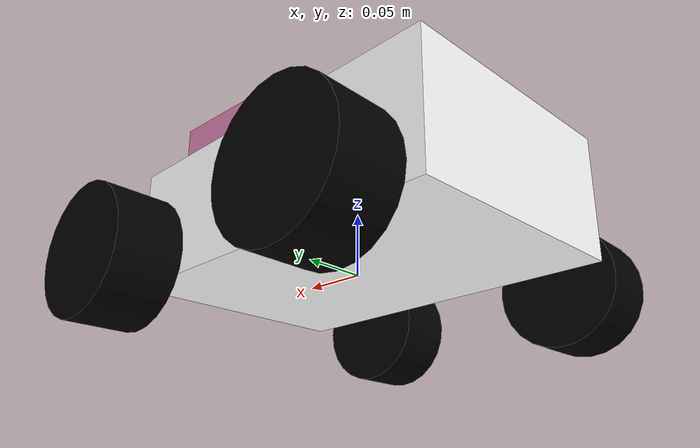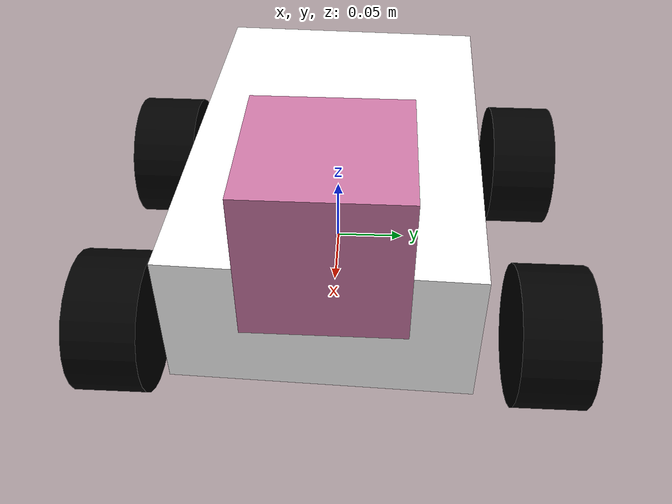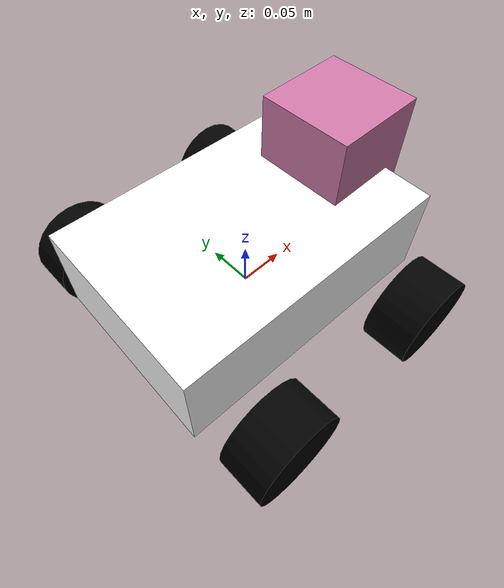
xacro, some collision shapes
<?xml version="1.0" ?>
<robot xmlns:xacro="http://www.ros.org/wiki/xacro"
 	xmlns:sensor="http://playerstage.sourceforge.net/gazebo/xmlschema/#sensor"
    	xmlns:controller="http://playerstage.sourceforge.net/gazebo/xmlschema/#controller"
    	xmlns:interface="http://playerstage.sourceforge.net/gazebo/xmlschema/#interface"
	name="basic_robot">

<xacro:include filename="$(find robot_with_laser)/urdf/laser_plugin.xacro" />

<xacro:property name="length_wheel" value="0.05" />
<xacro:property name="radius_wheel" value="0.05" />

<xacro:macro name="default_inertial" params="mass">
    <inertial>
        <mass value="${mass}" />
            <inertia ixx="1.0" ixy="0.0" ixz="0.0" iyy="1.0" iyz="0.0" izz="1.0" />
    </inertial>
</xacro:macro>

<link name="base_footprint">
   		<visual>
			<geometry>
      				<box size="0.001 0.001 0.001"/>
     			</geometry>
			<origin rpy="0 0 0" xyz="0 0 0"/>
   		</visual>
		<xacro:default_inertial mass="0.0001"/>
 	</link>

	<gazebo reference="base_footprint">
		<material>Gazebo/Green</material>
		<turnGravityOff>false</turnGravityOff>
	</gazebo>

	<joint name="base_footprint_joint" type="fixed">
		<origin xyz="0 0 0" />
		<parent link="base_footprint" />
		<child link="base_link" />
	</joint>

<link name="base_link">
  <visual>
     <geometry>
      	<box size="0.2 .3 .1"/>
     </geometry>
	<origin rpy="0 0 1.54" xyz="0 0 0.05"/>
    <material name="white">
	<color rgba="1 1 1 1"/>
    </material>
  </visual>
  <collision>
    <geometry>
      <box size="0.2 .3 0.1"/>
    </geometry>
      </collision>
    <xacro:default_inertial mass="10"/>
</link>

<link name="front_left_wheel">
   <visual>
    <geometry>
       <cylinder length="${length_wheel}" radius="${radius_wheel}"/>
    </geometry>
	<origin rpy="0 0 0" xyz="0 0 0"/>
   	 <material name="black">
	   <color rgba="0 0 0 1"/>
         </material>
    </visual>
<collision>
    <geometry>
      <cylinder length="${length_wheel}" radius="${radius_wheel}"/>
    </geometry>
    </collision>
      <xacro:default_inertial mass="1"/>
 </link>

<link name="back_left_wheel">
   <visual>
    <geometry>
       <cylinder length="${length_wheel}" radius="${radius_wheel}"/>
    </geometry>
	<origin rpy="0 0 0" xyz="0 0 0"/>
   	 <material name="black">
	   <color rgba="0 0 0 1"/>
         </material>
    </visual>
<collision>
    <geometry>
      <cylinder length="${length_wheel}" radius="${radius_wheel}"/>
    </geometry>
    </collision>
      <xacro:default_inertial mass="1"/>
 </link>

 <link name="front_right_wheel">
   <visual>
    <geometry>
       <cylinder length="${length_wheel}" radius="${radius_wheel}"/>
    </geometry>
	<origin rpy="0 0 0" xyz="0 0 0"/>
   	 <material name="black">
	   <color rgba="0 0 0 1"/>
         </material>
    </visual>
<collision>
    <geometry>
      <cylinder length="${length_wheel}" radius="${radius_wheel}"/>
    </geometry>
    </collision>
      <xacro:default_inertial mass="1"/>
 </link>

 <link name="back_right_wheel">
   <visual>
    <geometry>
       <cylinder length="${length_wheel}" radius="${radius_wheel}"/>
    </geometry>
	<origin rpy="0 0 0" xyz="0 0 0"/>
   	 <material name="black">
	   <color rgba="0 0 0 1"/>
         </material>
    </visual>
<collision>
    <geometry>
      <cylinder length="${length_wheel}" radius="${radius_wheel}"/>
    </geometry>
    </collision>
      <xacro:default_inertial mass="1"/>
 </link>

 <joint name="base_to_front_left_wheel" type="continuous">
   <parent link="base_link"/>
   <child link="front_left_wheel"/>
   <origin rpy="1.5707 0 0" xyz="0.1 0.15 0"/>
   <axis xyz="0 0 1" />
 </joint>

 <joint name="base_to_back_left_wheel" type="continuous">
   <axis xyz="0 0 1" />
   <anchor xyz="0 0 0" />
   <limit effort="100" velocity="100" />
   <parent link="base_link"/>
   <child link="back_left_wheel"/>
   <origin rpy="1.5707 0 0" xyz="-0.1 0.15 0"/>
</joint>

 <joint name="base_to_front_right_wheel" type="continuous">
   <parent link="base_link"/>
   <axis xyz="0 0 1" />
   <child link="front_right_wheel"/>
   <origin rpy="1.5707 0 0" xyz="0.1 -0.15 0"/>
 </joint>

 <joint name="base_to_back_right_wheel" type="continuous">
   <parent link="base_link"/>
   <axis xyz="0 0 1" />
   <child link="back_right_wheel"/>
   <origin rpy="1.5707 0 0" xyz="-0.1 -0.15 0"/>
 </joint>

<joint name="hokuyo_joint" type="fixed">
    <axis xyz="0 1 0" />
    <origin xyz="0.12 0 0.12" rpy="0 0 0"/>
    <parent link="base_link"/>
    <child link="hokuyo_link"/>
  </joint>

  <!-- Hokuyo Laser -->
  <link name="hokuyo_link">
    <collision>
      <origin xyz="0 0 0" rpy="0 0 0"/>
      <geometry>
    <box size="0.1 0.1 0.1"/>
      </geometry>
    </collision>

    <visual>
      <origin xyz="0 0 0" rpy="0 0 0"/>
      <geometry>
        <mesh filename="package://robot_with_laser/meshes/hokuyo.dae"/>
      </geometry>
    </visual>

    <inertial>
      <mass value="1e-5" />
      <origin xyz="0 0 0" rpy="0 0 0"/>
      <inertia ixx="1e-6" ixy="0" ixz="0" iyy="1e-6" iyz="0" izz="1e-6" />
    </inertial>
  </link>

</robot>
